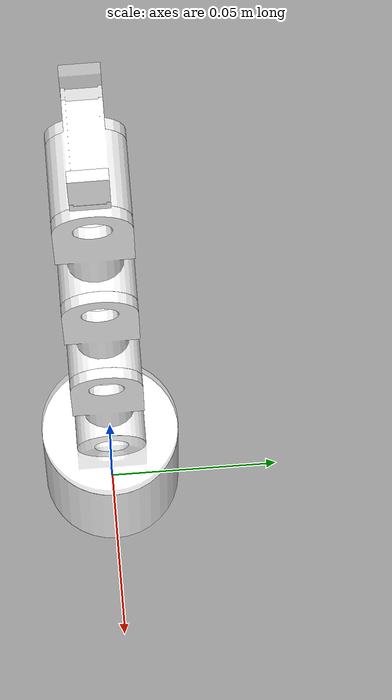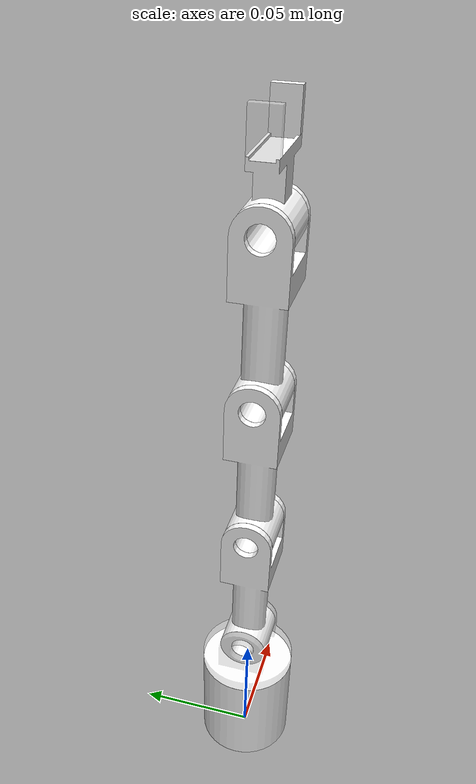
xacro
<?xml version="1.0" encoding="utf-8"?>
<robot name="arm" xmlns:xacro="http://www.ros.org/wiki/xacro">

  <link name="world"/>

  <link
    name="base_link">
    <inertial>
      <origin
        xyz="-1.0639E-18 0 0.0225"
        rpy="0 0 0" />
      <mass
        value="0.05768" />
      <inertia
        ixx="1.5501E-05"
        ixy="0"
        ixz="-1.9481E-37"
        iyy="1.5501E-05"
        iyz="-5.0159E-38"
        izz="1.1536E-05" />
    </inertial>
    <visual>
      <origin
        xyz="0 0 0"
        rpy="0 0 0" />
      <geometry>
        <mesh
          filename="package://arm_sim/meshes/base_link.STL" />
      </geometry>
      <material
        name="">
        <color
          rgba="1 1 1 1" />
      </material>
    </visual>
    <collision>
      <origin
        xyz="0 0 0"
        rpy="0 0 0" />
      <geometry>
        <mesh
          filename="package://arm_sim/meshes/base_link.STL" />
      </geometry>
    </collision>
  </link>

  <joint name="world_to_base" type="fixed">
    <parent link="world"/>
    <child link="base_link"/>
    <origin xyz="0 0 0" rpy="0 0 0"/>
  </joint>

  <link
    name="link1">
    <inertial>
      <origin
        xyz="-4.0978E-19 -9.8755E-18 0.0025911"
        rpy="0 0 0" />
      <mass
        value="0.0086396" />
      <inertia
        ixx="1.0316E-06"
        ixy="-1.4108E-23"
        ixz="1.4E-23"
        iyy="1.2174E-06"
        iyz="-1.4338E-21"
        izz="1.6687E-06" />
    </inertial>
    <visual>
      <origin
        xyz="0 0 0"
        rpy="0 0 0" />
      <geometry>
        <mesh
          filename="package://arm_sim/meshes/link1.STL" />
      </geometry>
      <material
        name="">
        <color
          rgba="1 1 1 0.32" />
      </material>
    </visual>
    <collision>
      <origin
        xyz="0 0 0"
        rpy="0 0 0" />
      <geometry>
        <mesh
          filename="package://arm_sim/meshes/link1.STL" />
      </geometry>
    </collision>
  </link>

  <joint
    name="joint1"
    type="revolute">
    <origin
      xyz="0 0 0.0475"
      rpy="0 0 0" />
    <parent
      link="base_link" />
    <child
      link="link1" />
    <axis
      xyz="0 0 -1" />
    <limit
      lower="-1.57"
      upper="1.57"
      effort="10"
      velocity="1" />
    <dynamics
      damping="0.1"
      friction="0.1" />
  </joint>
  <link
    name="link2">
    <inertial>
      <origin
        xyz="-0.026754 -0.00028438 2.3123E-19"
        rpy="0 0 0" />
      <mass
        value="0.014541" />
      <inertia
        ixx="1.2234E-06"
        ixy="-2.0157E-08"
        ixz="1.9988E-22"
        iyy="3.1196E-06"
        iyz="6.8418E-23"
        izz="2.8107E-06" />
    </inertial>
    <visual>
      <origin
        xyz="0 0 0"
        rpy="0 0 0" />
      <geometry>
        <mesh
          filename="package://arm_sim/meshes/link2.STL" />
      </geometry>
      <material
        name="">
        <color
          rgba="1 1 1 1" />
      </material>
    </visual>
    <collision>
      <origin
        xyz="0 0 0"
        rpy="0 0 0" />
      <geometry>
        <mesh
          filename="package://arm_sim/meshes/link2.STL" />
      </geometry>
    </collision>
  </link>
  <joint
    name="joint2"
    type="revolute">
    <origin
      xyz="0 0 0.0135"
      rpy="0 1.5708 0" />
    <parent
      link="link1" />
    <child
      link="link2" />
    <axis
      xyz="0 0 -1" />
    <limit
      lower="-1.57"
      upper="1.57"
      effort="10"
      velocity="1" />
    <dynamics
      damping="0.1"
      friction="0.1" />
  </joint>
  <link
    name="link3">
    <inertial>
      <origin
        xyz="-0.026754 -0.00028438 5.7937E-19"
        rpy="0 0 0" />
      <mass
        value="0.014541" />
      <inertia
        ixx="1.2234E-06"
        ixy="-2.0157E-08"
        ixz="2.811E-22"
        iyy="3.1196E-06"
        iyz="-6.1017E-23"
        izz="2.8107E-06" />
    </inertial>
    <visual>
      <origin
        xyz="0 0 0"
        rpy="0 0 0" />
      <geometry>
        <mesh
          filename="package://arm_sim/meshes/link3.STL" />
      </geometry>
      <material
        name="">
        <color
          rgba="1 1 1 1" />
      </material>
    </visual>
    <collision>
      <origin
        xyz="0 0 0"
        rpy="0 0 0" />
      <geometry>
        <mesh
          filename="package://arm_sim/meshes/link3.STL" />
      </geometry>
    </collision>
  </link>
  <joint
    name="joint3"
    type="revolute">
    <origin
      xyz="-0.060997 -0.00064835 0"
      rpy="0 0 0" />
    <parent
      link="link2" />
    <child
      link="link3" />
    <axis
      xyz="0 0 -1" />
    <limit
      lower="-1.57"
      upper="1.57"
      effort="10"
      velocity="1" />
    <dynamics
      damping="0.1"
      friction="0.1" />
  </joint>
  <link
    name="link4">
    <inertial>
      <origin
        xyz="-0.026754 -0.00028438 -8.1317E-19"
        rpy="0 0 0" />
      <mass
        value="0.014541" />
      <inertia
        ixx="1.2234E-06"
        ixy="-2.0157E-08"
        ixz="-9.1835E-23"
        iyy="3.1196E-06"
        iyz="-3.0904E-24"
        izz="2.8107E-06" />
    </inertial>
    <visual>
      <origin
        xyz="0 0 0"
        rpy="0 0 0" />
      <geometry>
        <mesh
          filename="package://arm_sim/meshes/link4.STL" />
      </geometry>
      <material
        name="">
        <color
          rgba="1 1 1 1" />
      </material>
    </visual>
    <collision>
      <origin
        xyz="0 0 0"
        rpy="0 0 0" />
      <geometry>
        <mesh
          filename="package://arm_sim/meshes/link4.STL" />
      </geometry>
    </collision>
  </link>
  <joint
    name="joint4"
    type="revolute">
    <origin
      xyz="-0.060997 -0.00064835 0"
      rpy="0 0 0" />
    <parent
      link="link3" />
    <child
      link="link4" />
    <axis
      xyz="0 0 -1" />
    <limit
      lower="-1.57"
      upper="1.57"
      effort="10"
      velocity="1" />
    <dynamics
      damping="0.1"
      friction="0.1" />
  </joint>
  <link
    name="link5">
    <inertial>
      <origin
        xyz="-0.0062473 -6.6404E-05 1.7204E-19"
        rpy="0 0 0" />
      <mass
        value="0.006847" />
      <inertia
        ixx="4.1054E-07"
        ixy="-5.1372E-09"
        ixz="-4.5044E-23"
        iyy="8.9379E-07"
        iyz="-1.6104E-23"
        izz="8.1974E-07" />
    </inertial>
    <visual>
      <origin
        xyz="0 0 0"
        rpy="0 0 0" />
      <geometry>
        <mesh
          filename="package://arm_sim/meshes/link5.STL" />
      </geometry>
      <material
        name="">
        <color
          rgba="1 1 1 1" />
      </material>
    </visual>
    <collision>
      <origin
        xyz="0 0 0"
        rpy="0 0 0" />
      <geometry>
        <mesh
          filename="package://arm_sim/meshes/link5.STL" />
      </geometry>
    </collision>
  </link>
  <joint
    name="joint5"
    type="revolute">
    <origin
      xyz="-0.060128 -0.00063912 0"
      rpy="0 0 0" />
    <parent
      link="link4" />
    <child
      link="link5" />
    <axis
      xyz="0 0 -1" />
    <limit
      lower="-1.57"
      upper="1.57"
      effort="10"
      velocity="1" />
    <dynamics
      damping="0.1"
      friction="0.1" />
  </joint>
  <link
    name="left_tooth">
    <inertial>
      <origin
        xyz="-0.0075942 -8.072E-05 1.5613E-17"
        rpy="0 0 0" />
      <mass
        value="0.00047508" />
      <inertia
        ixx="4.2388E-09"
        ixy="-5.13E-11"
        ixz="1.7893E-23"
        iyy="9.0645E-09"
        iyz="4.9457E-26"
        izz="1.2591E-08" />
    </inertial>
    <visual>
      <origin
        xyz="0 0 0"
        rpy="0 0 0" />
      <geometry>
        <mesh
          filename="package://arm_sim/meshes/left_tooth.STL" />
      </geometry>
      <material
        name="">
        <color
          rgba="1 1 1 0.32" />
      </material>
    </visual>
    <collision>
      <origin
        xyz="0 0 0"
        rpy="0 0 0" />
      <geometry>
        <mesh
          filename="package://arm_sim/meshes/left_tooth.STL" />
      </geometry>
    </collision>
  </link>
  <joint
    name="left_tooth_joint"
    type="prismatic">
    <origin
      xyz="-0.023867 -0.0002705 -0.013428"
      rpy="0 0 0" />
    <parent
      link="link5" />
    <child
      link="left_tooth" />
    <axis
      xyz="0 0 1" />
    <limit
      lower="0"
      upper="0.015"
      effort="5"
      velocity="0.01" />
    <dynamics
      damping="0.1"
      friction="0.1" />
  </joint>
  <link
    name="right_tooth">
    <inertial>
      <origin
        xyz="-0.0075942 8.072E-05 -1.5613E-17"
        rpy="0 0 0" />
      <mass
        value="0.00045288" />
      <inertia
        ixx="4.0407E-09"
        ixy="4.8902E-11"
        ixz="-1.662E-23"
        iyy="8.6409E-09"
        iyz="2.8842E-25"
        izz="1.2002E-08" />
    </inertial>
    <visual>
      <origin
        xyz="0 0 0"
        rpy="0 0 0" />
      <geometry>
        <mesh
          filename="package://arm_sim/meshes/right_tooth.STL" />
      </geometry>
      <material
        name="">
        <color
          rgba="1 1 1 1" />
      </material>
    </visual>
    <collision>
      <origin
        xyz="0 0 0"
        rpy="0 0 0" />
      <geometry>
        <mesh
          filename="package://arm_sim/meshes/right_tooth.STL" />
      </geometry>
    </collision>
  </link>
  <joint
    name="right_tooth_joint"
    type="prismatic">
    <origin
      xyz="-0.023867 -0.0002705 0.013419"
      rpy="3.1416 0 0" />
    <parent
      link="link5" />
    <child
      link="right_tooth" />
    <axis
      xyz="0 0 1" />
    <limit
      lower="0"
      upper="0.015"
      effort="5"
      velocity="0.01" />
    <dynamics
      damping="0.1"
      friction="0.1" />
  </joint>

<!-- ===== ros2_control: declares joint's interfaces ===== -->
  <ros2_control name="GazeboSystem" type="system">
    <hardware>
      <plugin>gazebo_ros2_control/GazeboSystem</plugin>
    </hardware>

    <joint name="joint1">
      <command_interface name="position">
        <param name="min">${-pi}</param>
        <param name="max">${pi}</param>
      </command_interface>
      <state_interface name="position"/>
      <state_interface name="velocity"/>
      <state_interface name="effort"/>
    </joint>

    <joint name="joint2">
      <command_interface name="position">
        <param name="min">${-pi/2}</param>
        <param name="max">${pi/2}</param>
      </command_interface>
      <state_interface name="position"/>
      <state_interface name="velocity"/>
      <state_interface name="effort"/>
    </joint>

    <joint name="joint3">
      <command_interface name="position">
        <param name="min">${-pi/2}</param>
        <param name="max">${pi/2}</param>
      </command_interface>
      <state_interface name="position"/>
      <state_interface name="velocity"/>
      <state_interface name="effort"/>
    </joint>

    <joint name="joint4">
      <command_interface name="position">
        <param name="min">${-pi/2}</param>
        <param name="max">${pi/2}</param>
      </command_interface>
      <state_interface name="position"/>
      <state_interface name="velocity"/>
      <state_interface name="effort"/>
    </joint>

    <joint name="joint5">
      <command_interface name="position">
        <param name="min">${-pi/2}</param>
        <param name="max">${pi/2}</param>
      </command_interface>
      <state_interface name="position"/>
      <state_interface name="velocity"/>
      <state_interface name="effort"/>
    </joint>

    <joint name="left_tooth_joint">
      <command_interface name="position">
        <param name="min">0</param>
        <param name="max">0.015</param>
      </command_interface>
      <state_interface name="position"/>
      <state_interface name="velocity"/>
      <state_interface name="effort"/>
    </joint>

    <joint name="right_tooth_joint">
      <command_interface name="position">
        <param name="min">0</param>
        <param name="max">0.015</param>
      </command_interface>
      <state_interface name="position"/>
      <state_interface name="velocity"/>
      <state_interface name="effort"/>
    </joint>

  </ros2_control>

  <!-- ===== Gazebo plugin: starts controller_manager, loads the yaml ===== -->
  <gazebo>
    <plugin name="gazebo_ros2_control" filename="libgazebo_ros2_control.so">
      <parameters>$(find arm_sim)/config/controllers.yaml</parameters>
    </plugin>
  </gazebo>

  <!-- ===== Gazebo colors ===== -->
  <gazebo reference="base_link">
    <material>Gazebo/Grey</material>
  </gazebo>
  <gazebo reference="link1">
    <material>Gazebo/Blue</material>
  </gazebo>
  <gazebo reference="link2">
    <material>Gazebo/Red</material>
  </gazebo>
  <gazebo reference="link3">
    <material>Gazebo/Green</material>
  </gazebo>
  <gazebo reference="link4">
    <material>Gazebo/Yellow</material>
  </gazebo>
  <gazebo reference="left_tooth">
    <material>Gazebo/Yellow</material>
    <mu1>3.0</mu1>
    <mu2>3.0</mu2>
    <kp>1000000.0</kp>
    <kd>1.0</kd>
    <minDepth>0.001</minDepth>
    <maxVel>0.0</maxVel>
  </gazebo>
  <gazebo reference="right_tooth">
    <material>Gazebo/Green</material>
    <mu1>3.0</mu1>
    <mu2>3.0</mu2>
    <kp>1000000.0</kp>
    <kd>1.0</kd>
    <minDepth>0.001</minDepth>
    <maxVel>0.0</maxVel>
  </gazebo>

</robot>
